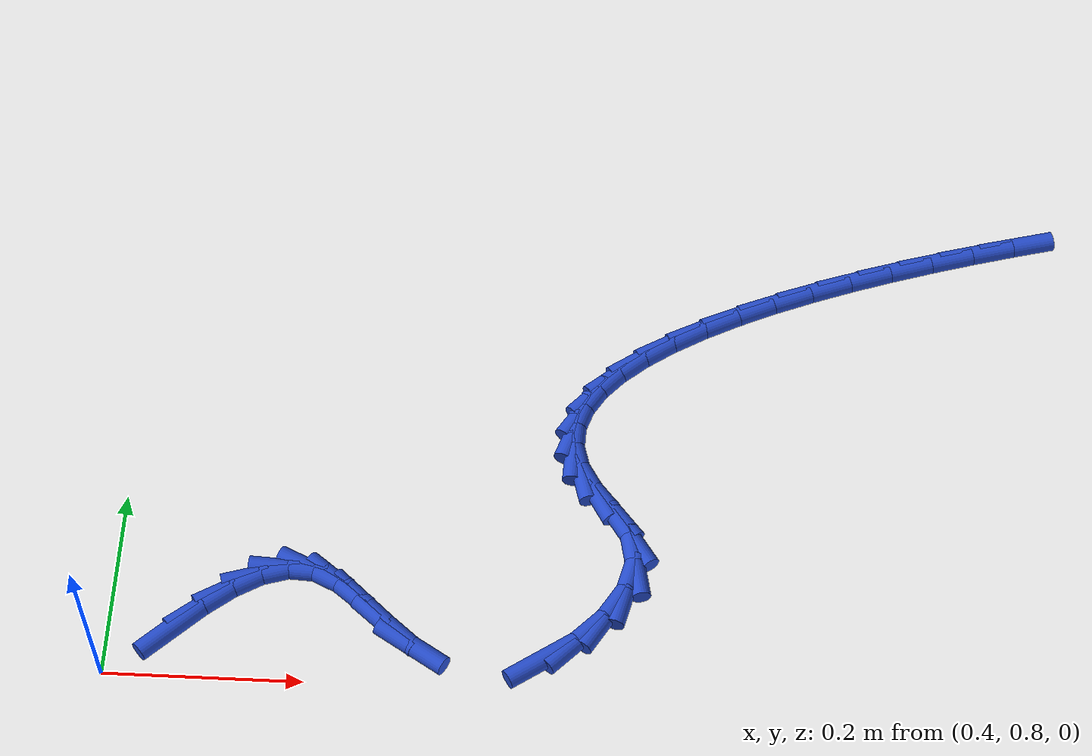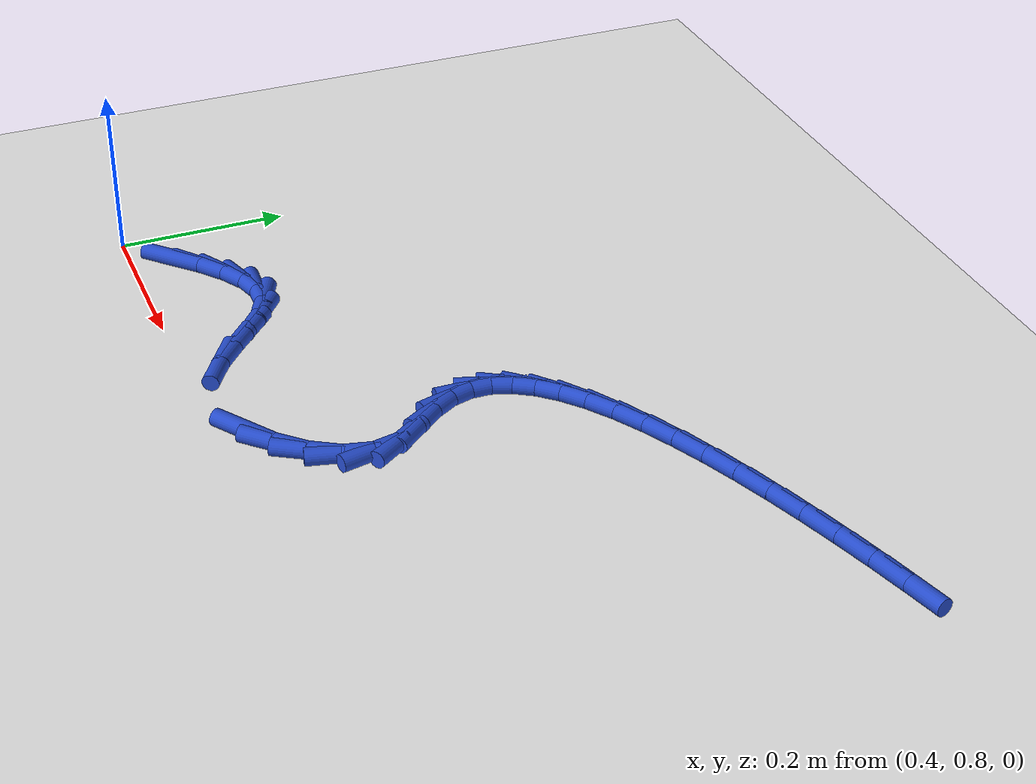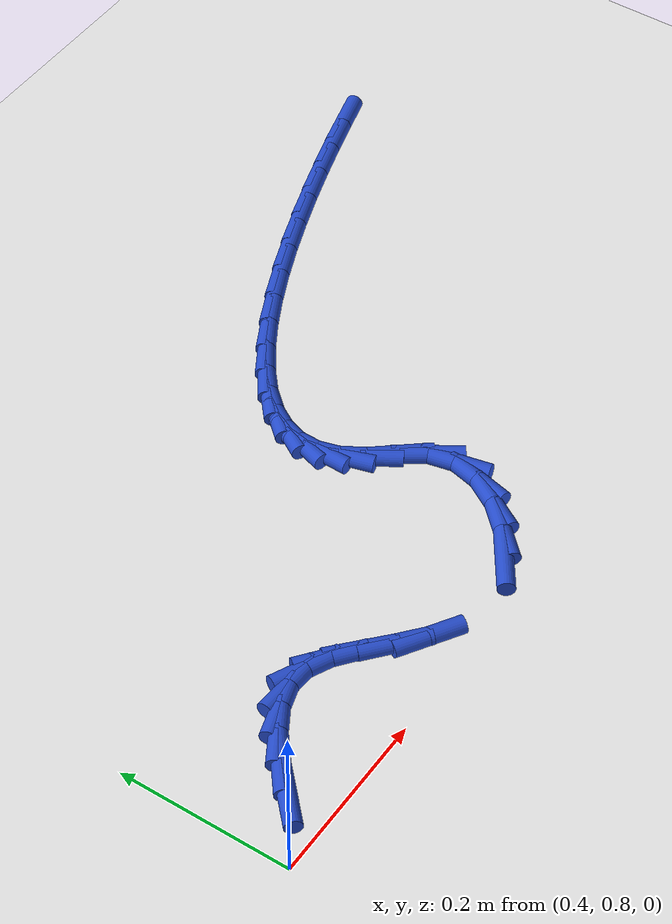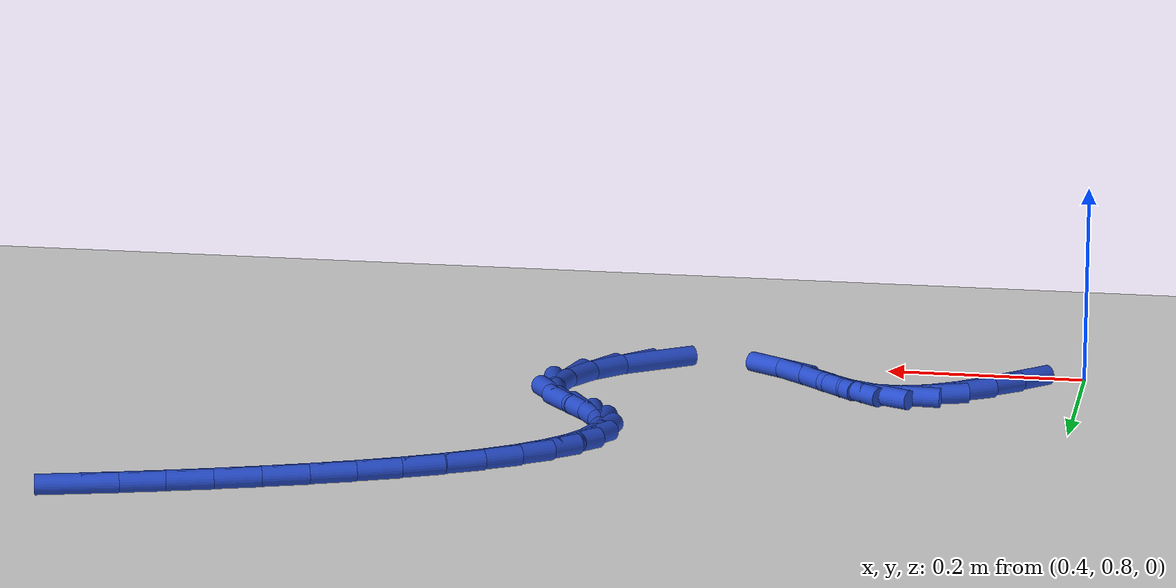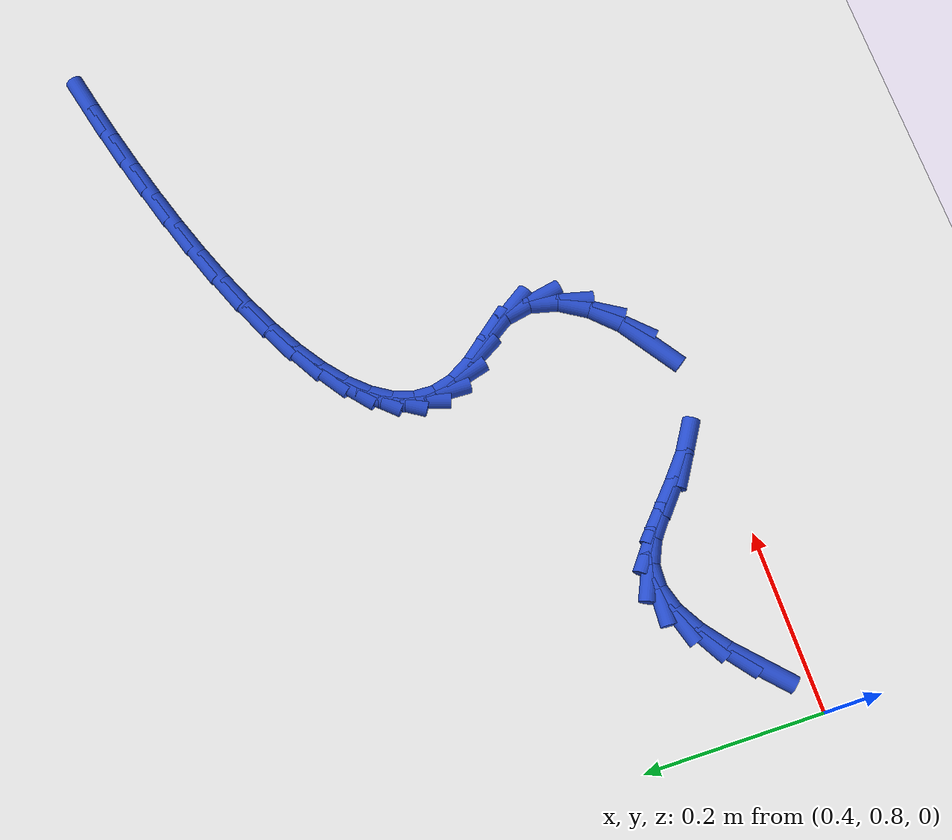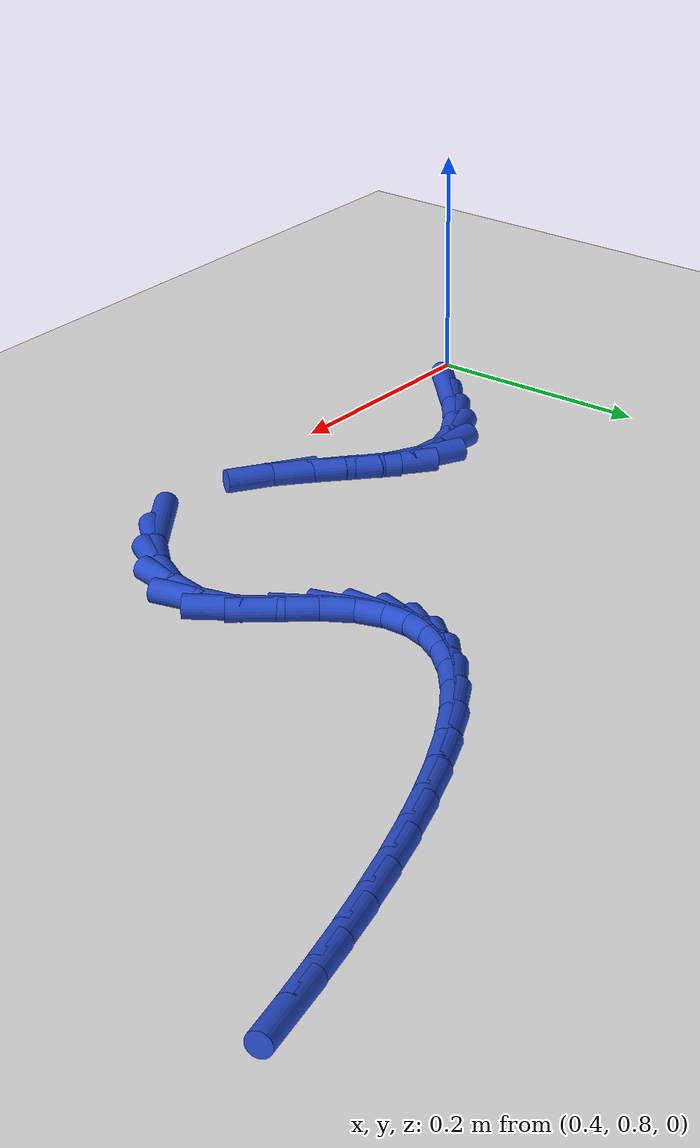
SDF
<sdf version="1.6">
 <world name="default">
  <model name="ground_plane">
   <static>1</static>
   <link name="link">
    <collision name="collision">
     <geometry><plane><normal>0 0 1</normal><size>100 100</size></plane></geometry>
     <surface><friction><ode><mu>100</mu><mu2>50</mu2></ode></friction></surface>
    </collision>
    <visual name="visual">
     <cast_shadows>0</cast_shadows>
     <geometry><plane><normal>0 0 1</normal><size>100 100</size></plane></geometry>
     <material>
      <script><uri>file://media/materials/scripts/gazebo.material</uri><name>Gazebo/WhiteGlow</name></script>
     </material>
    </visual>
   </link>
  </model>
  <model name="line">
   <link name="link_30">
    <pose>0.4645482928926192 0.8476396925871876 0.01 0 1.57 0.7621356927677012</pose>
    <collision name="collision">
     <geometry><cylinder><radius>0.01</radius><length>0.08</length></cylinder></geometry>
    </collision>
    <visual name="visual">
     <material>
      <script><name>Gazebo/Blue</name><uri>file://media/materials/scripts/gazebo.material</uri></script>
     </material>
     <geometry><cylinder><radius>0.01</radius><length>0.08</length></cylinder></geometry>
    </visual>
   </link>
   <link name="link_31">
    <pose>0.49213256239178854 0.8739695597865667 0.01 0 1.57 0.6750120277448454</pose>
    <collision name="collision">
     <geometry><cylinder><radius>0.01</radius><length>0.08</length></cylinder></geometry>
    </collision>
    <visual name="visual">
     <material>
      <script><name>Gazebo/Blue</name><uri>file://media/materials/scripts/gazebo.material</uri></script>
     </material>
     <geometry><cylinder><radius>0.01</radius><length>0.08</length></cylinder></geometry>
    </visual>
   </link>
   <link name="link_32">
    <pose>0.5197057995443821 0.896040410684806 0.01 0 1.57 0.5300459853184879</pose>
    <collision name="collision">
     <geometry><cylinder><radius>0.01</radius><length>0.08</length></cylinder></geometry>
    </collision>
    <visual name="visual">
     <material>
      <script><name>Gazebo/Blue</name><uri>file://media/materials/scripts/gazebo.material</uri></script>
     </material>
     <geometry><cylinder><radius>0.01</radius><length>0.08</length></cylinder></geometry>
    </visual>
   </link>
   <link name="link_33">
    <pose>0.5470565912374592 0.9120673944050098 0.01 0 1.57 0.29565012495039306</pose>
    <collision name="collision">
     <geometry><cylinder><radius>0.01</radius><length>0.08</length></cylinder></geometry>
    </collision>
    <visual name="visual">
     <material>
      <script><name>Gazebo/Blue</name><uri>file://media/materials/scripts/gazebo.material</uri></script>
     </material>
     <geometry><cylinder><radius>0.01</radius><length>0.08</length></cylinder></geometry>
    </visual>
   </link>
   <link name="link_34">
    <pose>0.573973524358079 0.9202656600702825 0.01 0 1.57 -0.05381983532159908</pose>
    <collision name="collision">
     <geometry><cylinder><radius>0.01</radius><length>0.08</length></cylinder></geometry>
    </collision>
    <visual name="visual">
     <material>
      <script><name>Gazebo/Blue</name><uri>file://media/materials/scripts/gazebo.material</uri></script>
     </material>
     <geometry><cylinder><radius>0.01</radius><length>0.08</length></cylinder></geometry>
    </visual>
   </link>
   <link name="link_35">
    <pose>0.6002451857933011 0.9188503568037286 0.01 0 1.57 -0.44125276178049466</pose>
    <collision name="collision">
     <geometry><cylinder><radius>0.01</radius><length>0.08</length></cylinder></geometry>
    </collision>
    <visual name="visual">
     <material>
      <script><name>Gazebo/Blue</name><uri>file://media/materials/scripts/gazebo.material</uri></script>
     </material>
     <geometry><cylinder><radius>0.01</radius><length>0.08</length></cylinder></geometry>
    </visual>
   </link>
   <link name="link_36">
    <pose>0.6257768149628437 0.9067914658486821 0.01 0 1.57 -0.6641257364054871</pose>
    <collision name="collision">
     <geometry><cylinder><radius>0.01</radius><length>0.08</length></cylinder></geometry>
    </collision>
    <visual name="visual">
     <material>
      <script><name>Gazebo/Blue</name><uri>file://media/materials/scripts/gazebo.material</uri></script>
     </material>
     <geometry><cylinder><radius>0.01</radius><length>0.08</length></cylinder></geometry>
    </visual>
   </link>
   <link name="link_37">
    <pose>0.6510804429153761 0.8869853796577263 0.01 0 1.57 -0.7366234121169817</pose>
    <collision name="collision">
     <geometry><cylinder><radius>0.01</radius><length>0.08</length></cylinder></geometry>
    </collision>
    <visual name="visual">
     <material>
      <script><name>Gazebo/Blue</name><uri>file://media/materials/scripts/gazebo.material</uri></script>
     </material>
     <geometry><cylinder><radius>0.01</radius><length>0.08</length></cylinder></geometry>
    </visual>
   </link>
   <link name="link_38">
    <pose>0.6768647764408978 0.8636011348639187 0.01 0 1.57 -0.7015799820788591</pose>
    <collision name="collision">
     <geometry><cylinder><radius>0.01</radius><length>0.08</length></cylinder></geometry>
    </collision>
    <visual name="visual">
     <material>
      <script><name>Gazebo/Blue</name><uri>file://media/materials/scripts/gazebo.material</uri></script>
     </material>
     <geometry><cylinder><radius>0.01</radius><length>0.08</length></cylinder></geometry>
    </visual>
   </link>
   <link name="link_39">
    <pose>0.7038386239582457 0.8408084257175098 0.01 0 1.57 -0.5582598452492732</pose>
    <collision name="collision">
     <geometry><cylinder><radius>0.01</radius><length>0.08</length></cylinder></geometry>
    </collision>
    <visual name="visual">
     <material>
      <script><name>Gazebo/Blue</name><uri>file://media/materials/scripts/gazebo.material</uri></script>
     </material>
     <geometry><cylinder><radius>0.01</radius><length>0.08</length></cylinder></geometry>
    </visual>
   </link>
   <link name="link_43">
    <pose>0.8333781376916977 0.8308116832055819 0.01 0 1.57 0.6041011716048205</pose>
    <collision name="collision">
     <geometry><cylinder><radius>0.01</radius><length>0.08</length></cylinder></geometry>
    </collision>
    <visual name="visual">
     <material>
      <script><name>Gazebo/Blue</name><uri>file://media/materials/scripts/gazebo.material</uri></script>
     </material>
     <geometry><cylinder><radius>0.01</radius><length>0.08</length></cylinder></geometry>
    </visual>
   </link>
   <link name="link_44">
    <pose>0.8659057337419693 0.8532613998769096 0.01 0 1.57 0.8047136071499122</pose>
    <collision name="collision">
     <geometry><cylinder><radius>0.01</radius><length>0.08</length></cylinder></geometry>
    </collision>
    <visual name="visual">
     <material>
      <script><name>Gazebo/Blue</name><uri>file://media/materials/scripts/gazebo.material</uri></script>
     </material>
     <geometry><cylinder><radius>0.01</radius><length>0.08</length></cylinder></geometry>
    </visual>
   </link>
   <link name="link_45">
    <pose>0.8931088062607991 0.8815361851206437 0.01 0 1.57 1.0303348112776927</pose>
    <collision name="collision">
     <geometry><cylinder><radius>0.01</radius><length>0.08</length></cylinder></geometry>
    </collision>
    <visual name="visual">
     <material>
      <script><name>Gazebo/Blue</name><uri>file://media/materials/scripts/gazebo.material</uri></script>
     </material>
     <geometry><cylinder><radius>0.01</radius><length>0.08</length></cylinder></geometry>
    </visual>
   </link>
   <link name="link_46">
    <pose>0.912027132438595 0.9130637261631414 0.01 0 1.57 1.336912426205885</pose>
    <collision name="collision">
     <geometry><cylinder><radius>0.01</radius><length>0.08</length></cylinder></geometry>
    </collision>
    <visual name="visual">
     <material>
      <script><name>Gazebo/Blue</name><uri>file://media/materials/scripts/gazebo.material</uri></script>
     </material>
     <geometry><cylinder><radius>0.01</radius><length>0.08</length></cylinder></geometry>
    </visual>
   </link>
   <link name="link_47">
    <pose>0.919700489465766 0.9452717102307596 0.01 0 1.57 -1.3618487671296438</pose>
    <collision name="collision">
     <geometry><cylinder><radius>0.01</radius><length>0.08</length></cylinder></geometry>
    </collision>
    <visual name="visual">
     <material>
      <script><name>Gazebo/Blue</name><uri>file://media/materials/scripts/gazebo.material</uri></script>
     </material>
     <geometry><cylinder><radius>0.01</radius><length>0.08</length></cylinder></geometry>
    </visual>
   </link>
   <link name="link_48">
    <pose>0.9132661326690819 0.9756163754162838 0.01 0 1.57 -0.9794050983664577</pose>
    <collision name="collision">
     <geometry><cylinder><radius>0.01</radius><length>0.08</length></cylinder></geometry>
    </collision>
    <visual name="visual">
     <material>
      <script><name>Gazebo/Blue</name><uri>file://media/materials/scripts/gazebo.material</uri></script>
     </material>
     <geometry><cylinder><radius>0.01</radius><length>0.08</length></cylinder></geometry>
    </visual>
   </link>
   <link name="link_49">
    <pose>0.8948632785258921 1.0030190096177318 0.01 0 1.57 -0.8838972463474902</pose>
    <collision name="collision">
     <geometry><cylinder><radius>0.01</radius><length>0.08</length></cylinder></geometry>
    </collision>
    <visual name="visual">
     <material>
      <script><name>Gazebo/Blue</name><uri>file://media/materials/scripts/gazebo.material</uri></script>
     </material>
     <geometry><cylinder><radius>0.01</radius><length>0.08</length></cylinder></geometry>
    </visual>
   </link>
   <link name="link_50">
    <pose>0.8739329485953989 1.0285395635077748 0.01 0 1.57 -1.0335879980780518</pose>
    <collision name="collision">
     <geometry><cylinder><radius>0.01</radius><length>0.08</length></cylinder></geometry>
    </collision>
    <visual name="visual">
     <material>
      <script><name>Gazebo/Blue</name><uri>file://media/materials/scripts/gazebo.material</uri></script>
     </material>
     <geometry><cylinder><radius>0.01</radius><length>0.08</length></cylinder></geometry>
    </visual>
   </link>
   <link name="link_51">
    <pose>0.8592115667278005 1.053254747948973 0.01 0 1.57 -1.29859569289673</pose>
    <collision name="collision">
     <geometry><cylinder><radius>0.01</radius><length>0.08</length></cylinder></geometry>
    </collision>
    <visual name="visual">
     <material>
      <script><name>Gazebo/Blue</name><uri>file://media/materials/scripts/gazebo.material</uri></script>
     </material>
     <geometry><cylinder><radius>0.01</radius><length>0.08</length></cylinder></geometry>
    </visual>
   </link>
   <link name="link_52">
    <pose>0.8524684329561548 1.0774125359403435 0.01 0 1.57 1.5432106980710691</pose>
    <collision name="collision">
     <geometry><cylinder><radius>0.01</radius><length>0.08</length></cylinder></geometry>
    </collision>
    <visual name="visual">
     <material>
      <script><name>Gazebo/Blue</name><uri>file://media/materials/scripts/gazebo.material</uri></script>
     </material>
     <geometry><cylinder><radius>0.01</radius><length>0.08</length></cylinder></geometry>
    </visual>
   </link>
   <link name="link_53">
    <pose>0.8531187455249725 1.100980880584885 0.01 0 1.57 1.2565857160745957</pose>
    <collision name="collision">
     <geometry><cylinder><radius>0.01</radius><length>0.08</length></cylinder></geometry>
    </collision>
    <visual name="visual">
     <material>
      <script><name>Gazebo/Blue</name><uri>file://media/materials/scripts/gazebo.material</uri></script>
     </material>
     <geometry><cylinder><radius>0.01</radius><length>0.08</length></cylinder></geometry>
    </visual>
   </link>
   <link name="link_54">
    <pose>0.8605758619552474 1.1239275160319369 0.01 0 1.57 1.0204856344525668</pose>
    <collision name="collision">
     <geometry><cylinder><radius>0.01</radius><length>0.08</length></cylinder></geometry>
    </collision>
    <visual name="visual">
     <material>
      <script><name>Gazebo/Blue</name><uri>file://media/materials/scripts/gazebo.material</uri></script>
     </material>
     <geometry><cylinder><radius>0.01</radius><length>0.08</length></cylinder></geometry>
    </visual>
   </link>
   <link name="link_55">
    <pose>0.8742531397679729 1.1462201764308364 0.01 0 1.57 0.8414434889442308</pose>
    <collision name="collision">
     <geometry><cylinder><radius>0.01</radius><length>0.08</length></cylinder></geometry>
    </collision>
    <visual name="visual">
     <material>
      <script><name>Gazebo/Blue</name><uri>file://media/materials/scripts/gazebo.material</uri></script>
     </material>
     <geometry><cylinder><radius>0.01</radius><length>0.08</length></cylinder></geometry>
    </visual>
   </link>
   <link name="link_56">
    <pose>0.893563936484142 1.1678265959309213 0.01 0 1.57 0.7088606977462394</pose>
    <collision name="collision">
     <geometry><cylinder><radius>0.01</radius><length>0.08</length></cylinder></geometry>
    </collision>
    <visual name="visual">
     <material>
      <script><name>Gazebo/Blue</name><uri>file://media/materials/scripts/gazebo.material</uri></script>
     </material>
     <geometry><cylinder><radius>0.01</radius><length>0.08</length></cylinder></geometry>
    </visual>
   </link>
   <link name="link_57">
    <pose>0.917921609624748 1.1887145086815298 0.01 0 1.57 0.6099011780740867</pose>
    <collision name="collision">
     <geometry><cylinder><radius>0.01</radius><length>0.08</length></cylinder></geometry>
    </collision>
    <visual name="visual">
     <material>
      <script><name>Gazebo/Blue</name><uri>file://media/materials/scripts/gazebo.material</uri></script>
     </material>
     <geometry><cylinder><radius>0.01</radius><length>0.08</length></cylinder></geometry>
    </visual>
   </link>
   <link name="link_58">
    <pose>0.9467395167107846 1.2088516488319991 0.01 0 1.57 0.5345330191964237</pose>
    <collision name="collision">
     <geometry><cylinder><radius>0.01</radius><length>0.08</length></cylinder></geometry>
    </collision>
    <visual name="visual">
     <material>
      <script><name>Gazebo/Blue</name><uri>file://media/materials/scripts/gazebo.material</uri></script>
     </material>
     <geometry><cylinder><radius>0.01</radius><length>0.08</length></cylinder></geometry>
    </visual>
   </link>
   <link name="link_59">
    <pose>0.9794310152632452 1.2282057505316684 0.01 0 1.57 0.47579286345281796</pose>
    <collision name="collision">
     <geometry><cylinder><radius>0.01</radius><length>0.08</length></cylinder></geometry>
    </collision>
    <visual name="visual">
     <material>
      <script><name>Gazebo/Blue</name><uri>file://media/materials/scripts/gazebo.material</uri></script>
     </material>
     <geometry><cylinder><radius>0.01</radius><length>0.08</length></cylinder></geometry>
    </visual>
   </link>
   <link name="link_60">
    <pose>1.0154094628031232 1.2467445479298744 0.01 0 1.57 0.4289814032866932</pose>
    <collision name="collision">
     <geometry><cylinder><radius>0.01</radius><length>0.08</length></cylinder></geometry>
    </collision>
    <visual name="visual">
     <material>
      <script><name>Gazebo/Blue</name><uri>file://media/materials/scripts/gazebo.material</uri></script>
     </material>
     <geometry><cylinder><radius>0.01</radius><length>0.08</length></cylinder></geometry>
    </visual>
   </link>
   <link name="link_61">
    <pose>1.0540882168514116 1.264435775175956 0.01 0 1.57 0.390911209791771</pose>
    <collision name="collision">
     <geometry><cylinder><radius>0.01</radius><length>0.08</length></cylinder></geometry>
    </collision>
    <visual name="visual">
     <material>
      <script><name>Gazebo/Blue</name><uri>file://media/materials/scripts/gazebo.material</uri></script>
     </material>
     <geometry><cylinder><radius>0.01</radius><length>0.08</length></cylinder></geometry>
    </visual>
   </link>
   <link name="link_62">
    <pose>1.094880634929104 1.2812471664192504 0.01 0 1.57 0.35938165832704916</pose>
    <collision name="collision">
     <geometry><cylinder><radius>0.01</radius><length>0.08</length></cylinder></geometry>
    </collision>
    <visual name="visual">
     <material>
      <script><name>Gazebo/Blue</name><uri>file://media/materials/scripts/gazebo.material</uri></script>
     </material>
     <geometry><cylinder><radius>0.01</radius><length>0.08</length></cylinder></geometry>
    </visual>
   </link>
   <link name="link_63">
    <pose>1.1372000745571942 1.297146455809096 0.01 0 1.57 0.33283900901021535</pose>
    <collision name="collision">
     <geometry><cylinder><radius>0.01</radius><length>0.08</length></cylinder></geometry>
    </collision>
    <visual name="visual">
     <material>
      <script><name>Gazebo/Blue</name><uri>file://media/materials/scripts/gazebo.material</uri></script>
     </material>
     <geometry><cylinder><radius>0.01</radius><length>0.08</length></cylinder></geometry>
    </visual>
   </link>
   <link name="link_64">
    <pose>1.1804598932566748 1.3121013774948298 0.01 0 1.57 0.3101594216612146</pose>
    <collision name="collision">
     <geometry><cylinder><radius>0.01</radius><length>0.08</length></cylinder></geometry>
    </collision>
    <visual name="visual">
     <material>
      <script><name>Gazebo/Blue</name><uri>file://media/materials/scripts/gazebo.material</uri></script>
     </material>
     <geometry><cylinder><radius>0.01</radius><length>0.08</length></cylinder></geometry>
    </visual>
   </link>
   <link name="link_65">
    <pose>1.2240734485485394 1.3260796656257907 0.01 0 1.57 0.2905089482103704</pose>
    <collision name="collision">
     <geometry><cylinder><radius>0.01</radius><length>0.08</length></cylinder></geometry>
    </collision>
    <visual name="visual">
     <material>
      <script><name>Gazebo/Blue</name><uri>file://media/materials/scripts/gazebo.material</uri></script>
     </material>
     <geometry><cylinder><radius>0.01</radius><length>0.08</length></cylinder></geometry>
    </visual>
   </link>
   <link name="link_66">
    <pose>1.267454097953782 1.3390490543513165 0.01 0 1.57 0.2732508585352861</pose>
    <collision name="collision">
     <geometry><cylinder><radius>0.01</radius><length>0.08</length></cylinder></geometry>
    </collision>
    <visual name="visual">
     <material>
      <script><name>Gazebo/Blue</name><uri>file://media/materials/scripts/gazebo.material</uri></script>
     </material>
     <geometry><cylinder><radius>0.01</radius><length>0.08</length></cylinder></geometry>
    </visual>
   </link>
   <link name="link_67">
    <pose>1.3100151989933952 1.350977277820745 0.01 0 1.57 0.2578815889737345</pose>
    <collision name="collision">
     <geometry><cylinder><radius>0.01</radius><length>0.08</length></cylinder></geometry>
    </collision>
    <visual name="visual">
     <material>
      <script><name>Gazebo/Blue</name><uri>file://media/materials/scripts/gazebo.material</uri></script>
     </material>
     <geometry><cylinder><radius>0.01</radius><length>0.08</length></cylinder></geometry>
    </visual>
   </link>
  </model>
 </world>
</sdf>
